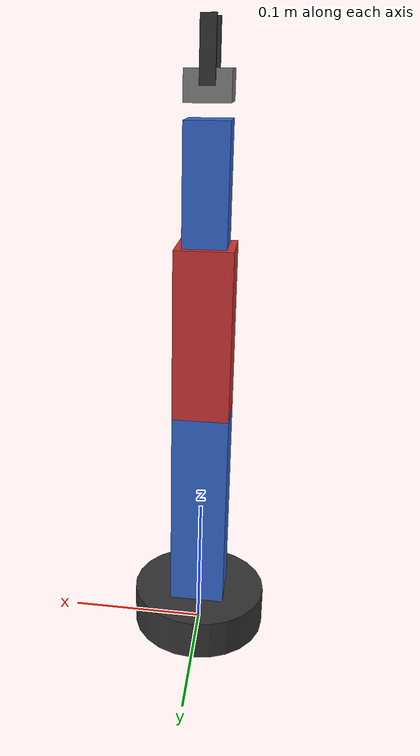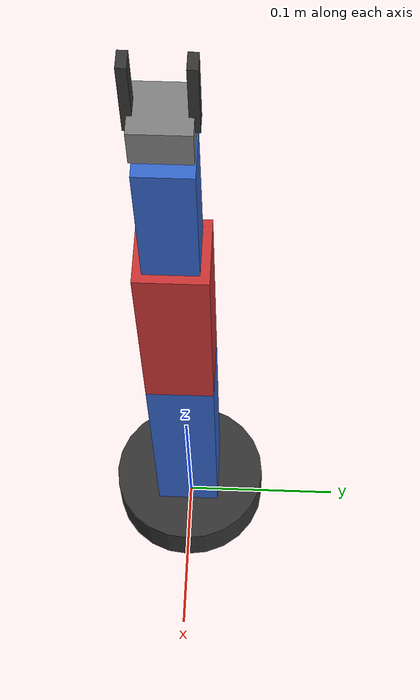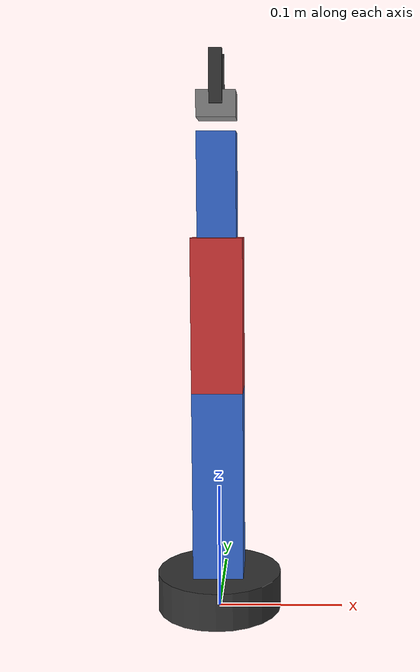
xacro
<?xml version="1.0"?>
<robot name="robosort_arm" xmlns:xacro="http://www.ros.org/wiki/xacro">

  <!-- Robot Properties -->
  <xacro:property name="PI" value="3.14159265359"/>

  <!-- Link dimensions (meters) -->
  <xacro:property name="base_radius" value="0.05"/>
  <xacro:property name="base_height" value="0.03"/>
  <xacro:property name="shoulder_length" value="0.15"/>
  <xacro:property name="elbow_length" value="0.12"/>
  <xacro:property name="wrist_length" value="0.08"/>
  <xacro:property name="gripper_length" value="0.06"/>
  <xacro:property name="link_radius" value="0.02"/>

  <!-- Colors -->
  <material name="black">
    <color rgba="0.2 0.2 0.2 1.0"/>
  </material>

  <material name="blue">
    <color rgba="0.2 0.4 0.8 1.0"/>
  </material>

  <material name="red">
    <color rgba="0.8 0.2 0.2 1.0"/>
  </material>

  <material name="grey">
    <color rgba="0.5 0.5 0.5 1.0"/>
  </material>

  <!-- World Frame -->
  <link name="world"/>

  <!-- Base Link -->
  <link name="base_link">
    <visual>
      <origin xyz="0 0 ${base_height/2}" rpy="0 0 0"/>
      <geometry>
        <cylinder radius="${base_radius}" length="${base_height}"/>
      </geometry>
      <material name="black"/>
    </visual>
    <collision>
      <origin xyz="0 0 ${base_height/2}" rpy="0 0 0"/>
      <geometry>
        <cylinder radius="${base_radius}" length="${base_height}"/>
      </geometry>
    </collision>
    <inertial>
      <mass value="0.5"/>
      <inertia ixx="0.001" ixy="0.0" ixz="0.0" iyy="0.001" iyz="0.0" izz="0.001"/>
    </inertial>
  </link>

  <!-- Base Joint (Servo 0 - Base Rotation) -->
  <joint name="base_joint" type="fixed">
    <parent link="world"/>
    <child link="base_link"/>
    <origin xyz="0 0 0" rpy="0 0 0"/>
  </joint>

  <joint name="base_revolute" type="revolute">
    <parent link="base_link"/>
    <child link="shoulder_link"/>
    <origin xyz="0 0 ${base_height}" rpy="0 0 0"/>
    <axis xyz="0 0 1"/>
    <limit lower="${-PI}" upper="${PI}" effort="2.0" velocity="0.5"/>
  </joint>

  <!-- Shoulder Link (Servo 1) -->
  <link name="shoulder_link">
    <visual>
      <origin xyz="0 0 ${shoulder_length/2}" rpy="0 0 0"/>
      <geometry>
        <box size="${link_radius*2} ${link_radius*2} ${shoulder_length}"/>
      </geometry>
      <material name="blue"/>
    </visual>
    <collision>
      <origin xyz="0 0 ${shoulder_length/2}" rpy="0 0 0"/>
      <geometry>
        <box size="${link_radius*2} ${link_radius*2} ${shoulder_length}"/>
      </geometry>
    </collision>
    <inertial>
      <mass value="0.2"/>
      <inertia ixx="0.0001" ixy="0.0" ixz="0.0" iyy="0.0001" iyz="0.0" izz="0.0001"/>
    </inertial>
  </link>

  <!-- Shoulder Joint (Servo 1) -->
  <joint name="shoulder_joint" type="revolute">
    <parent link="shoulder_link"/>
    <child link="elbow_link"/>
    <origin xyz="0 0 ${shoulder_length}" rpy="0 0 0"/>
    <axis xyz="0 1 0"/>
    <limit lower="${-PI/2}" upper="${PI/2}" effort="2.0" velocity="0.5"/>
  </joint>

  <!-- Elbow Link (Servo 2) -->
  <link name="elbow_link">
    <visual>
      <origin xyz="0 0 ${elbow_length/2}" rpy="0 0 0"/>
      <geometry>
        <box size="${link_radius*2} ${link_radius*2} ${elbow_length}"/>
      </geometry>
      <material name="red"/>
    </visual>
    <collision>
      <origin xyz="0 0 ${elbow_length/2}" rpy="0 0 0"/>
      <geometry>
        <box size="${link_radius*2} ${link_radius*2} ${elbow_length}"/>
      </geometry>
    </collision>
    <inertial>
      <mass value="0.15"/>
      <inertia ixx="0.0001" ixy="0.0" ixz="0.0" iyy="0.0001" iyz="0.0" izz="0.0001"/>
    </inertial>
  </link>

  <!-- Elbow Joint (Servo 2) -->
  <joint name="elbow_joint" type="revolute">
    <parent link="elbow_link"/>
    <child link="wrist_link"/>
    <origin xyz="0 0 ${elbow_length}" rpy="0 0 0"/>
    <axis xyz="0 1 0"/>
    <limit lower="${-PI/2}" upper="${PI/2}" effort="2.0" velocity="0.5"/>
  </joint>

  <!-- Wrist Link (Servo 3) -->
  <link name="wrist_link">
    <visual>
      <origin xyz="0 0 ${wrist_length/2}" rpy="0 0 0"/>
      <geometry>
        <box size="${link_radius*1.5} ${link_radius*1.5} ${wrist_length}"/>
      </geometry>
      <material name="blue"/>
    </visual>
    <collision>
      <origin xyz="0 0 ${wrist_length/2}" rpy="0 0 0"/>
      <geometry>
        <box size="${link_radius*1.5} ${link_radius*1.5} ${wrist_length}"/>
      </geometry>
    </collision>
    <inertial>
      <mass value="0.1"/>
      <inertia ixx="0.00005" ixy="0.0" ixz="0.0" iyy="0.00005" iyz="0.0" izz="0.00005"/>
    </inertial>
  </link>

  <!-- Wrist Joint (Servo 3) -->
  <joint name="wrist_joint" type="revolute">
    <parent link="wrist_link"/>
    <child link="gripper_base_link"/>
    <origin xyz="0 0 ${wrist_length}" rpy="0 0 0"/>
    <axis xyz="0 0 1"/>
    <limit lower="${-PI}" upper="${PI}" effort="1.5" velocity="0.5"/>
  </joint>

  <!-- Gripper Base Link -->
  <link name="gripper_base_link">
    <visual>
      <origin xyz="0 0 ${gripper_length/3}" rpy="0 0 0"/>
      <geometry>
        <box size="0.03 0.03 ${gripper_length/3}"/>
      </geometry>
      <material name="grey"/>
    </visual>
    <collision>
      <origin xyz="0 0 ${gripper_length/3}" rpy="0 0 0"/>
      <geometry>
        <box size="0.03 0.03 ${gripper_length/3}"/>
      </geometry>
    </collision>
    <inertial>
      <mass value="0.05"/>
      <inertia ixx="0.00001" ixy="0.0" ixz="0.0" iyy="0.00001" iyz="0.0" izz="0.00001"/>
    </inertial>
  </link>

  <!-- Gripper Left Finger Joint (Servo 4) -->
  <joint name="gripper_left_joint" type="revolute">
    <parent link="gripper_base_link"/>
    <child link="gripper_left_link"/>
    <origin xyz="0 0.015 ${gripper_length/3}" rpy="0 0 0"/>
    <axis xyz="0 1 0"/>
    <limit lower="0" upper="${PI/4}" effort="1.0" velocity="0.3"/>
  </joint>

  <!-- Gripper Left Finger -->
  <link name="gripper_left_link">
    <visual>
      <origin xyz="0 0 ${gripper_length*2/3/2}" rpy="0 0 0"/>
      <geometry>
        <box size="0.01 0.005 ${gripper_length*2/3}"/>
      </geometry>
      <material name="black"/>
    </visual>
    <collision>
      <origin xyz="0 0 ${gripper_length*2/3/2}" rpy="0 0 0"/>
      <geometry>
        <box size="0.01 0.005 ${gripper_length*2/3}"/>
      </geometry>
    </collision>
    <inertial>
      <mass value="0.02"/>
      <inertia ixx="0.000001" ixy="0.0" ixz="0.0" iyy="0.000001" iyz="0.0" izz="0.000001"/>
    </inertial>
  </link>

  <!-- Gripper Right Finger Joint (Servo 4 - mimic) -->
  <joint name="gripper_right_joint" type="revolute">
    <parent link="gripper_base_link"/>
    <child link="gripper_right_link"/>
    <origin xyz="0 -0.015 ${gripper_length/3}" rpy="0 0 0"/>
    <axis xyz="0 1 0"/>
    <limit lower="${-PI/4}" upper="0" effort="1.0" velocity="0.3"/>
    <mimic joint="gripper_left_joint" multiplier="-1"/>
  </joint>

  <!-- Gripper Right Finger -->
  <link name="gripper_right_link">
    <visual>
      <origin xyz="0 0 ${gripper_length*2/3/2}" rpy="0 0 0"/>
      <geometry>
        <box size="0.01 0.005 ${gripper_length*2/3}"/>
      </geometry>
      <material name="black"/>
    </visual>
    <collision>
      <origin xyz="0 0 ${gripper_length*2/3/2}" rpy="0 0 0"/>
      <geometry>
        <box size="0.01 0.005 ${gripper_length*2/3}"/>
      </geometry>
    </collision>
    <inertial>
      <mass value="0.02"/>
      <inertia ixx="0.000001" ixy="0.0" ixz="0.0" iyy="0.000001" iyz="0.0" izz="0.000001"/>
    </inertial>
  </link>

  <!-- End Effector Frame -->
  <link name="end_effector_link"/>

  <joint name="end_effector_joint" type="fixed">
    <parent link="gripper_base_link"/>
    <child link="end_effector_link"/>
    <origin xyz="0 0 ${gripper_length}" rpy="0 0 0"/>
  </joint>

</robot>
